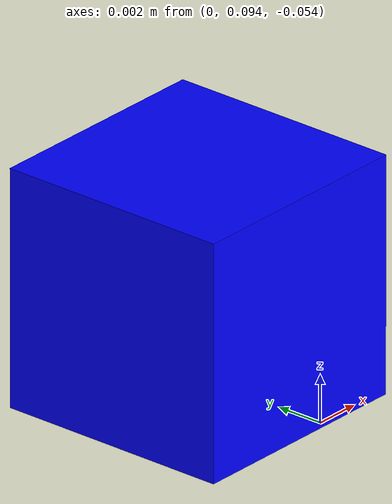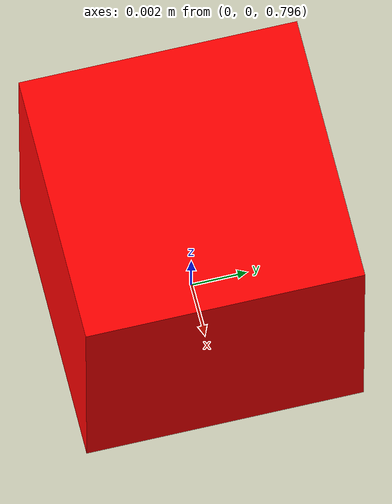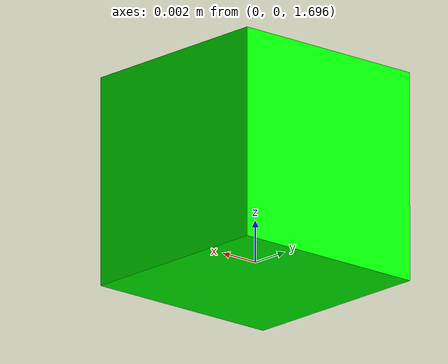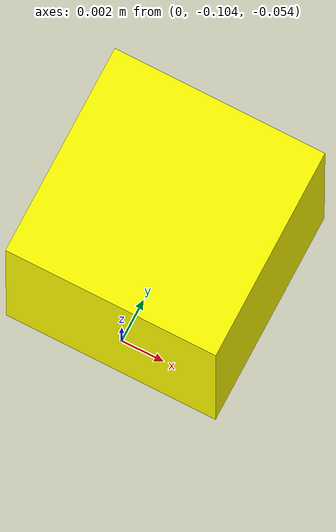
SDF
<?xml version="1.0" ?>
<sdf version="1.7">
  <model name="humanoid_imu_sensors">
    <!-- IMU sensor configuration for humanoid robot balance and orientation -->
    <!-- Primary IMU positioned at the center of mass (torso) for balance control -->
    <link name="imu_torso_link">
      <pose>0.0 0.0 0.8 0 0 0</pose> <!-- Positioned at approximate center of mass -->
      <inertial>
        <mass>0.01</mass>
        <inertia>
          <ixx>1e-6</ixx>
          <ixy>0</ixy>
          <ixz>0</ixz>
          <iyy>1e-6</iyy>
          <iyz>0</iyz>
          <izz>1e-6</izz>
        </inertia>
      </inertial>

      <!-- Small visual representation for the IMU -->
      <visual name="imu_visual">
        <geometry>
          <box>
            <size>0.01 0.01 0.01</size>
          </box>
        </geometry>
        <material>
          <ambient>1 0 0 1</ambient>
          <diffuse>1 0 0 1</diffuse>
        </material>
      </visual>

      <!-- Primary IMU sensor definition -->
      <sensor name="imu_torso" type="imu">
        <pose>0 0 0 0 0 0</pose>
        <imu>
          <!-- Angular velocity measurements with noise modeling -->
          <angular_velocity>
            <x>
              <noise type="gaussian">
                <mean>0.0</mean>
                <stddev>2e-4</stddev> <!-- 0.2 mrad/s standard deviation -->
              </noise>
            </x>
            <y>
              <noise type="gaussian">
                <mean>0.0</mean>
                <stddev>2e-4</stddev>
              </noise>
            </y>
            <z>
              <noise type="gaussian">
                <mean>0.0</mean>
                <stddev>2e-4</stddev>
              </noise>
            </z>
          </angular_velocity>

          <!-- Linear acceleration measurements with noise modeling -->
          <linear_acceleration>
            <x>
              <noise type="gaussian">
                <mean>0.0</mean>
                <stddev>1.7e-2</stddev> <!-- 17 mg standard deviation -->
              </noise>
            </x>
            <y>
              <noise type="gaussian">
                <mean>0.0</mean>
                <stddev>1.7e-2</stddev>
              </noise>
            </y>
            <z>
              <noise type="gaussian">
                <mean>0.0</mean>
                <stddev>1.7e-2</stddev>
              </noise>
            </z>
          </linear_acceleration>
        </imu>
        <always_on>true</always_on>
        <update_rate>100.0</update_rate> <!-- 100 Hz update rate for balance control -->
        <plugin name="imu_torso_controller" filename="libgazebo_ros_imu.so">
          <ros>
            <namespace>/humanoid</namespace>
            <remapping>~/out:=imu/torso/data</remapping>
          </ros>
          <frame_name>imu_torso_link</frame_name>
          <initial_orientation_as_reference>false</initial_orientation_as_reference>
        </plugin>
      </sensor>
    </link>

    <!-- Secondary IMU positioned at the head for orientation tracking -->
    <link name="imu_head_link">
      <pose>0.0 0.0 1.7 0 0 0</pose> <!-- Positioned at head level -->
      <inertial>
        <mass>0.01</mass>
        <inertia>
          <ixx>1e-6</ixx>
          <ixy>0</ixy>
          <ixz>0</ixz>
          <iyy>1e-6</iyy>
          <iyz>0</iyz>
          <izz>1e-6</izz>
        </inertia>
      </inertial>

      <!-- Small visual representation for the head IMU -->
      <visual name="imu_head_visual">
        <geometry>
          <box>
            <size>0.01 0.01 0.01</size>
          </box>
        </geometry>
        <material>
          <ambient>0 1 0 1</ambient>
          <diffuse>0 1 0 1</diffuse>
        </material>
      </visual>

      <!-- Head IMU sensor definition -->
      <sensor name="imu_head" type="imu">
        <pose>0 0 0 0 0 0</pose>
        <imu>
          <!-- Angular velocity measurements with noise modeling -->
          <angular_velocity>
            <x>
              <noise type="gaussian">
                <mean>0.0</mean>
                <stddev>2e-4</stddev>
              </noise>
            </x>
            <y>
              <noise type="gaussian">
                <mean>0.0</mean>
                <stddev>2e-4</stddev>
              </noise>
            </y>
            <z>
              <noise type="gaussian">
                <mean>0.0</mean>
                <stddev>2e-4</stddev>
              </noise>
            </z>
          </angular_velocity>

          <!-- Linear acceleration measurements with noise modeling -->
          <linear_acceleration>
            <x>
              <noise type="gaussian">
                <mean>0.0</mean>
                <stddev>1.7e-2</stddev>
              </noise>
            </x>
            <y>
              <noise type="gaussian">
                <mean>0.0</mean>
                <stddev>1.7e-2</stddev>
              </noise>
            </y>
            <z>
              <noise type="gaussian">
                <mean>0.0</mean>
                <stddev>1.7e-2</stddev>
              </noise>
            </z>
          </linear_acceleration>
        </imu>
        <always_on>true</always_on>
        <update_rate>100.0</update_rate> <!-- 100 Hz update rate for head orientation -->
        <plugin name="imu_head_controller" filename="libgazebo_ros_imu.so">
          <ros>
            <namespace>/humanoid</namespace>
            <remapping>~/out:=imu/head/data</remapping>
          </ros>
          <frame_name>imu_head_link</frame_name>
          <initial_orientation_as_reference>false</initial_orientation_as_reference>
        </plugin>
      </sensor>
    </link>

    <!-- IMU on left foot for ground contact detection -->
    <link name="imu_left_foot_link">
      <pose>0.0 0.1 -0.05 0 0 0</pose> <!-- Positioned at left foot -->
      <inertial>
        <mass>0.01</mass>
        <inertia>
          <ixx>1e-6</ixx>
          <ixy>0</ixy>
          <ixz>0</ixz>
          <iyy>1e-6</iyy>
          <iyz>0</iyz>
          <izz>1e-6</izz>
        </inertia>
      </inertial>

      <!-- Small visual representation for the left foot IMU -->
      <visual name="imu_left_foot_visual">
        <geometry>
          <box>
            <size>0.01 0.01 0.01</size>
          </box>
        </geometry>
        <material>
          <ambient>0 0 1 1</ambient>
          <diffuse>0 0 1 1</diffuse>
        </material>
      </visual>

      <!-- Left foot IMU sensor definition -->
      <sensor name="imu_left_foot" type="imu">
        <pose>0 0 0 0 0 0</pose>
        <imu>
          <!-- Angular velocity measurements with noise modeling -->
          <angular_velocity>
            <x>
              <noise type="gaussian">
                <mean>0.0</mean>
                <stddev>5e-4</stddev> <!-- Slightly higher noise for foot IMU -->
              </noise>
            </x>
            <y>
              <noise type="gaussian">
                <mean>0.0</mean>
                <stddev>5e-4</stddev>
              </noise>
            </y>
            <z>
              <noise type="gaussian">
                <mean>0.0</mean>
                <stddev>5e-4</stddev>
              </noise>
            </z>
          </angular_velocity>

          <!-- Linear acceleration measurements with noise modeling -->
          <linear_acceleration>
            <x>
              <noise type="gaussian">
                <mean>0.0</mean>
                <stddev>2e-2</stddev> <!-- Higher noise for foot IMU due to impacts -->
              </noise>
            </x>
            <y>
              <noise type="gaussian">
                <mean>0.0</mean>
                <stddev>2e-2</stddev>
              </noise>
            </y>
            <z>
              <noise type="gaussian">
                <mean>0.0</mean>
                <stddev>2e-2</stddev>
              </noise>
            </z>
          </linear_acceleration>
        </imu>
        <always_on>true</always_on>
        <update_rate>200.0</update_rate> <!-- Higher rate for contact detection -->
        <plugin name="imu_left_foot_controller" filename="libgazebo_ros_imu.so">
          <ros>
            <namespace>/humanoid</namespace>
            <remapping>~/out:=imu/left_foot/data</remapping>
          </ros>
          <frame_name>imu_left_foot_link</frame_name>
          <initial_orientation_as_reference>false</initial_orientation_as_reference>
        </plugin>
      </sensor>
    </link>

    <!-- IMU on right foot for ground contact detection -->
    <link name="imu_right_foot_link">
      <pose>0.0 -0.1 -0.05 0 0 0</pose> <!-- Positioned at right foot -->
      <inertial>
        <mass>0.01</mass>
        <inertia>
          <ixx>1e-6</ixx>
          <ixy>0</ixy>
          <ixz>0</ixz>
          <iyy>1e-6</iyy>
          <iyz>0</iyz>
          <izz>1e-6</izz>
        </inertia>
      </inertial>

      <!-- Small visual representation for the right foot IMU -->
      <visual name="imu_right_foot_visual">
        <geometry>
          <box>
            <size>0.01 0.01 0.01</size>
          </box>
        </geometry>
        <material>
          <ambient>1 1 0 1</ambient>
          <diffuse>1 1 0 1</diffuse>
        </material>
      </visual>

      <!-- Right foot IMU sensor definition -->
      <sensor name="imu_right_foot" type="imu">
        <pose>0 0 0 0 0 0</pose>
        <imu>
          <!-- Angular velocity measurements with noise modeling -->
          <angular_velocity>
            <x>
              <noise type="gaussian">
                <mean>0.0</mean>
                <stddev>5e-4</stddev> <!-- Slightly higher noise for foot IMU -->
              </noise>
            </x>
            <y>
              <noise type="gaussian">
                <mean>0.0</mean>
                <stddev>5e-4</stddev>
              </noise>
            </y>
            <z>
              <noise type="gaussian">
                <mean>0.0</mean>
                <stddev>5e-4</stddev>
              </noise>
            </z>
          </angular_velocity>

          <!-- Linear acceleration measurements with noise modeling -->
          <linear_acceleration>
            <x>
              <noise type="gaussian">
                <mean>0.0</mean>
                <stddev>2e-2</stddev> <!-- Higher noise for foot IMU due to impacts -->
              </noise>
            </x>
            <y>
              <noise type="gaussian">
                <mean>0.0</mean>
                <stddev>2e-2</stddev>
              </noise>
            </y>
            <z>
              <noise type="gaussian">
                <mean>0.0</mean>
                <stddev>2e-2</stddev>
              </noise>
            </z>
          </linear_acceleration>
        </imu>
        <always_on>true</always_on>
        <update_rate>200.0</update_rate> <!-- Higher rate for contact detection -->
        <plugin name="imu_right_foot_controller" filename="libgazebo_ros_imu.so">
          <ros>
            <namespace>/humanoid</namespace>
            <remapping>~/out:=imu/right_foot/data</remapping>
          </ros>
          <frame_name>imu_right_foot_link</frame_name>
          <initial_orientation_as_reference>false</initial_orientation_as_reference>
        </plugin>
      </sensor>
    </link>

    <!-- Joint to connect torso IMU to the robot -->
    <joint name="imu_torso_to_torso" type="fixed">
      <parent>torso_link</parent> <!-- This would connect to actual torso link in full robot model -->
      <child>imu_torso_link</child>
      <pose>0 0 0 0 0 0</pose>
    </joint>

    <!-- Joint to connect head IMU to the robot -->
    <joint name="imu_head_to_head" type="fixed">
      <parent>head_link</parent> <!-- This would connect to actual head link in full robot model -->
      <child>imu_head_link</child>
      <pose>0 0 0 0 0 0</pose>
    </joint>

    <!-- Joint to connect left foot IMU to the robot -->
    <joint name="imu_left_foot_to_left_foot" type="fixed">
      <parent>left_foot_link</parent> <!-- This would connect to actual left foot link in full robot model -->
      <child>imu_left_foot_link</child>
      <pose>0 0 0 0 0 0</pose>
    </joint>

    <!-- Joint to connect right foot IMU to the robot -->
    <joint name="imu_right_foot_to_right_foot" type="fixed">
      <parent>right_foot_link</parent> <!-- This would connect to actual right foot link in full robot model -->
      <child>imu_right_foot_link</child>
      <pose>0 0 0 0 0 0</pose>
    </joint>
  </model>
</sdf>
